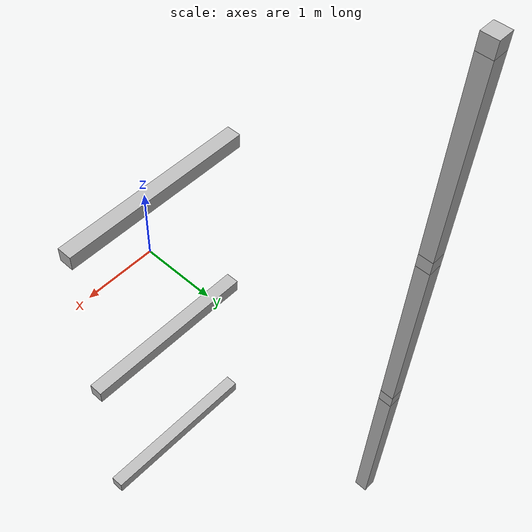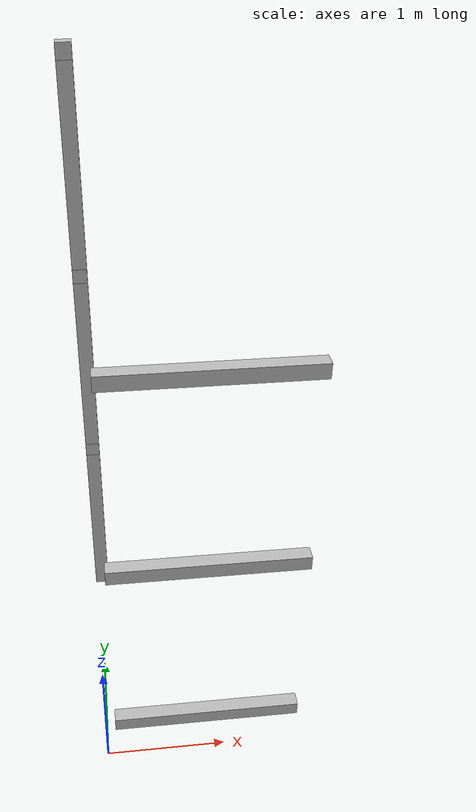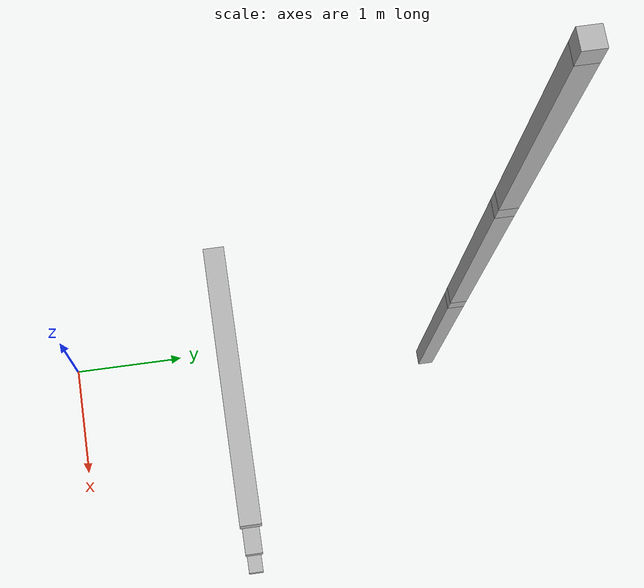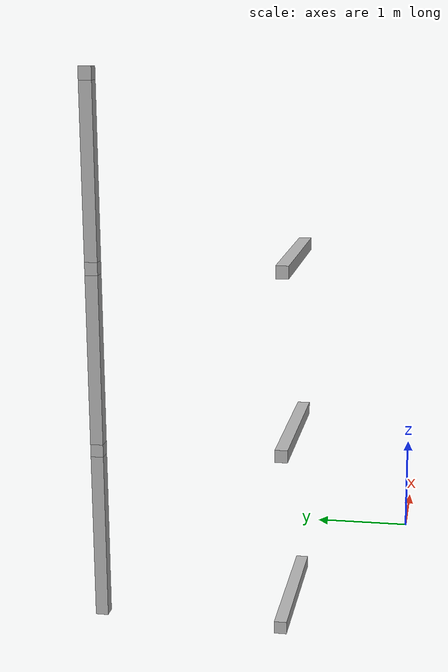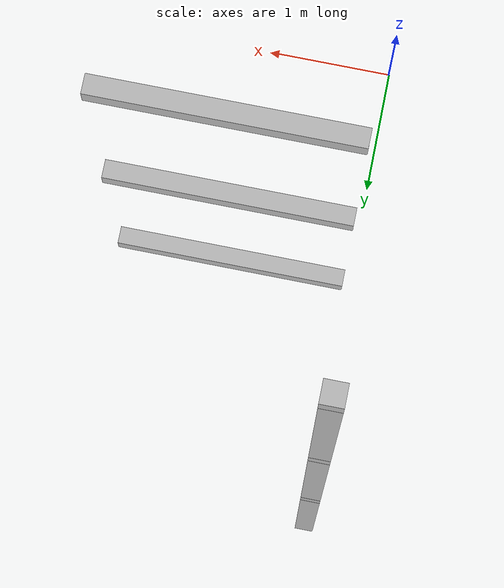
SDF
<sdf version="1.7">
 <world name="default">
  <model name="orthogonal_747_2.000.15_TS">
   <static>1</static>
   <link name="x_link_0_3_3">
    <inertial>
     <mass>1</mass>
     <inertia>
      <ixx>0.166667</ixx>
      <ixy>0</ixy>
      <ixz>0</ixz>
      <iyy>0.166667</iyy>
      <iyz>0</iyz>
      <izz>0.166667</izz>
     </inertia>
    </inertial>
    <pose>7.525 6.45 1.075 0 -0 0</pose>
    <visual name="visual_0">
     <laser_retro>547</laser_retro>
     <geometry><box><size>2 1e-06 0.15</size></box></geometry>
     <material>
      <script><name>Gazebo/Grey</name><uri>file://media/materials/scripts/gazebo.material</uri></script>
      <shader type="pixel"><normal_map>__default__</normal_map></shader>
      <ambient>0.678 0.498 0.659 1</ambient>
      <diffuse>0.7 0.7 0.7 1</diffuse>
      <specular>0.01 0.01 0.01 1</specular>
      <emissive>0 0 0 1</emissive>
     </material>
     <pose>0 -0.075 0 0 -0 0</pose>
     <transparency>1</transparency>
    </visual>
    <visual name="visual_1">
     <laser_retro>548</laser_retro>
     <geometry><box><size>2 1e-06 0.15</size></box></geometry>
     <material>
      <script><name>Gazebo/Grey</name><uri>file://media/materials/scripts/gazebo.material</uri></script>
      <shader type="pixel"><normal_map>__default__</normal_map></shader>
      <ambient>0.447 0.624 0.812 1</ambient>
      <diffuse>0.7 0.7 0.7 1</diffuse>
      <specular>0.01 0.01 0.01 1</specular>
      <emissive>0 0 0 1</emissive>
     </material>
     <pose>0 0.075 0 0 -0 0</pose>
     <transparency>1</transparency>
    </visual>
    <visual name="visual_2">
     <laser_retro>549</laser_retro>
     <geometry><box><size>2 0.15 1e-06</size></box></geometry>
     <material>
      <script><name>Gazebo/Grey</name><uri>file://media/materials/scripts/gazebo.material</uri></script>
      <shader type="pixel"><normal_map>__default__</normal_map></shader>
      <ambient>0.988 0.686 0.243 1</ambient>
      <diffuse>0.7 0.7 0.7 1</diffuse>
      <specular>0.01 0.01 0.01 1</specular>
      <emissive>0 0 0 1</emissive>
     </material>
     <pose>0 0 -0.075 0 -0 0</pose>
     <transparency>1</transparency>
    </visual>
    <visual name="visual_3">
     <laser_retro>550</laser_retro>
     <geometry><box><size>1e-06 0.15 0.15</size></box></geometry>
     <material>
      <script><name>Gazebo/Grey</name><uri>file://media/materials/scripts/gazebo.material</uri></script>
      <shader type="pixel"><normal_map>__default__</normal_map></shader>
      <ambient>0.988 0.914 0.31 1</ambient>
      <diffuse>0.7 0.7 0.7 1</diffuse>
      <specular>0.01 0.01 0.01 1</specular>
      <emissive>0 0 0 1</emissive>
     </material>
     <pose>1 0 0 0 -0 0</pose>
     <transparency>1</transparency>
    </visual>
    <visual name="visual_4">
     <laser_retro>551</laser_retro>
     <geometry><box><size>2 0.15 1e-06</size></box></geometry>
     <material>
      <script><name>Gazebo/Grey</name><uri>file://media/materials/scripts/gazebo.material</uri></script>
      <shader type="pixel"><normal_map>__default__</normal_map></shader>
      <ambient>0.937 0.161 0.161 1</ambient>
      <diffuse>0.7 0.7 0.7 1</diffuse>
      <specular>0.01 0.01 0.01 1</specular>
      <emissive>0 0 0 1</emissive>
     </material>
     <pose>0 0 0.075 0 -0 0</pose>
     <transparency>1</transparency>
    </visual>
    <visual name="visual_5">
     <laser_retro>552</laser_retro>
     <geometry><box><size>1e-06 0.15 0.15</size></box></geometry>
     <material>
      <script><name>Gazebo/Grey</name><uri>file://media/materials/scripts/gazebo.material</uri></script>
      <shader type="pixel"><normal_map>__default__</normal_map></shader>
      <ambient>0.541 0.886 0.204 1</ambient>
      <diffuse>0.7 0.7 0.7 1</diffuse>
      <specular>0.01 0.01 0.01 1</specular>
      <emissive>0 0 0 1</emissive>
     </material>
     <pose>-1 0 0 0 -0 0</pose>
     <transparency>1</transparency>
    </visual>
    <visual name="visual_texture">
     <geometry><box><size>1.9998 0.149985 0.149985</size></box></geometry>
     <material>
      <script>
       <uri>model://BASE_MODELS/simple_block_v2_textured/materials/scripts</uri>
       <uri>model://BASE_MODELS/simple_block_v2_textured/materials/textures</uri>
       <name>metal</name>
      </script>
     </material>
     <laser_retro>553</laser_retro>
    </visual>
    <collision name="collision">
     <geometry><box><size>2 0.15 0.15</size></box></geometry>
     <surface>
      <friction>
       <ode><mu>1</mu><mu2>1</mu2><fdir1>0 0 0</fdir1><slip1>0</slip1><slip2>0</slip2></ode>
       <torsional>
        <coefficient>1</coefficient>
        <patch_radius>0</patch_radius>
        <surface_radius>0</surface_radius>
        <use_patch_radius>1</use_patch_radius>
        <ode><slip>0</slip></ode>
       </torsional>
      </friction>
      <bounce><restitution_coefficient>0</restitution_coefficient><threshold>1e+06</threshold></bounce>
      <contact>
       <collide_without_contact>0</collide_without_contact>
       <collide_without_contact_bitmask>1</collide_without_contact_bitmask>
       <collide_bitmask>1</collide_bitmask>
       <ode>
        <soft_cfm>0</soft_cfm>
        <soft_erp>0.2</soft_erp>
        <kp>1e+13</kp>
        <kd>1</kd>
        <max_vel>0.01</max_vel>
        <min_depth>0</min_depth>
       </ode>
       <bullet>
        <split_impulse>1</split_impulse>
        <split_impulse_penetration_threshold>-0.01</split_impulse_penetration_threshold>
        <soft_cfm>0</soft_cfm>
        <soft_erp>0.2</soft_erp>
        <kp>1e+13</kp>
        <kd>1</kd>
       </bullet>
      </contact>
     </surface>
    </collision>
   </link>
   <link name="x_link_1_3_3">
    <inertial>
     <mass>1</mass>
     <inertia>
      <ixx>0.166667</ixx>
      <ixy>0</ixy>
      <ixz>0</ixz>
      <iyy>0.166667</iyy>
      <iyz>0</iyz>
      <izz>0.166667</izz>
     </inertia>
    </inertial>
    <pose>7.525 6.45 3.225 0 -0 0</pose>
    <visual name="visual_0">
     <laser_retro>1387</laser_retro>
     <geometry><box><size>2 1e-06 0.15</size></box></geometry>
     <material>
      <script><name>Gazebo/Grey</name><uri>file://media/materials/scripts/gazebo.material</uri></script>
      <shader type="pixel"><normal_map>__default__</normal_map></shader>
      <ambient>0.678 0.498 0.659 1</ambient>
      <diffuse>0.7 0.7 0.7 1</diffuse>
      <specular>0.01 0.01 0.01 1</specular>
      <emissive>0 0 0 1</emissive>
     </material>
     <pose>0 -0.075 0 0 -0 0</pose>
     <transparency>1</transparency>
    </visual>
    <visual name="visual_1">
     <laser_retro>1388</laser_retro>
     <geometry><box><size>2 1e-06 0.15</size></box></geometry>
     <material>
      <script><name>Gazebo/Grey</name><uri>file://media/materials/scripts/gazebo.material</uri></script>
      <shader type="pixel"><normal_map>__default__</normal_map></shader>
      <ambient>0.447 0.624 0.812 1</ambient>
      <diffuse>0.7 0.7 0.7 1</diffuse>
      <specular>0.01 0.01 0.01 1</specular>
      <emissive>0 0 0 1</emissive>
     </material>
     <pose>0 0.075 0 0 -0 0</pose>
     <transparency>1</transparency>
    </visual>
    <visual name="visual_2">
     <laser_retro>1389</laser_retro>
     <geometry><box><size>2 0.15 1e-06</size></box></geometry>
     <material>
      <script><name>Gazebo/Grey</name><uri>file://media/materials/scripts/gazebo.material</uri></script>
      <shader type="pixel"><normal_map>__default__</normal_map></shader>
      <ambient>0.988 0.686 0.243 1</ambient>
      <diffuse>0.7 0.7 0.7 1</diffuse>
      <specular>0.01 0.01 0.01 1</specular>
      <emissive>0 0 0 1</emissive>
     </material>
     <pose>0 0 -0.075 0 -0 0</pose>
     <transparency>1</transparency>
    </visual>
    <visual name="visual_3">
     <laser_retro>1390</laser_retro>
     <geometry><box><size>1e-06 0.15 0.15</size></box></geometry>
     <material>
      <script><name>Gazebo/Grey</name><uri>file://media/materials/scripts/gazebo.material</uri></script>
      <shader type="pixel"><normal_map>__default__</normal_map></shader>
      <ambient>0.988 0.914 0.31 1</ambient>
      <diffuse>0.7 0.7 0.7 1</diffuse>
      <specular>0.01 0.01 0.01 1</specular>
      <emissive>0 0 0 1</emissive>
     </material>
     <pose>1 0 0 0 -0 0</pose>
     <transparency>1</transparency>
    </visual>
    <visual name="visual_4">
     <laser_retro>1391</laser_retro>
     <geometry><box><size>2 0.15 1e-06</size></box></geometry>
     <material>
      <script><name>Gazebo/Grey</name><uri>file://media/materials/scripts/gazebo.material</uri></script>
      <shader type="pixel"><normal_map>__default__</normal_map></shader>
      <ambient>0.937 0.161 0.161 1</ambient>
      <diffuse>0.7 0.7 0.7 1</diffuse>
      <specular>0.01 0.01 0.01 1</specular>
      <emissive>0 0 0 1</emissive>
     </material>
     <pose>0 0 0.075 0 -0 0</pose>
     <transparency>1</transparency>
    </visual>
    <visual name="visual_5">
     <laser_retro>1392</laser_retro>
     <geometry><box><size>1e-06 0.15 0.15</size></box></geometry>
     <material>
      <script><name>Gazebo/Grey</name><uri>file://media/materials/scripts/gazebo.material</uri></script>
      <shader type="pixel"><normal_map>__default__</normal_map></shader>
      <ambient>0.541 0.886 0.204 1</ambient>
      <diffuse>0.7 0.7 0.7 1</diffuse>
      <specular>0.01 0.01 0.01 1</specular>
      <emissive>0 0 0 1</emissive>
     </material>
     <pose>-1 0 0 0 -0 0</pose>
     <transparency>1</transparency>
    </visual>
    <visual name="visual_texture">
     <geometry><box><size>1.9998 0.149985 0.149985</size></box></geometry>
     <material>
      <script>
       <uri>model://BASE_MODELS/simple_block_v2_textured/materials/scripts</uri>
       <uri>model://BASE_MODELS/simple_block_v2_textured/materials/textures</uri>
       <name>metal</name>
      </script>
     </material>
     <laser_retro>1393</laser_retro>
    </visual>
    <collision name="collision">
     <geometry><box><size>2 0.15 0.15</size></box></geometry>
     <surface>
      <friction>
       <ode><mu>1</mu><mu2>1</mu2><fdir1>0 0 0</fdir1><slip1>0</slip1><slip2>0</slip2></ode>
       <torsional>
        <coefficient>1</coefficient>
        <patch_radius>0</patch_radius>
        <surface_radius>0</surface_radius>
        <use_patch_radius>1</use_patch_radius>
        <ode><slip>0</slip></ode>
       </torsional>
      </friction>
      <bounce><restitution_coefficient>0</restitution_coefficient><threshold>1e+06</threshold></bounce>
      <contact>
       <collide_without_contact>0</collide_without_contact>
       <collide_without_contact_bitmask>1</collide_without_contact_bitmask>
       <collide_bitmask>1</collide_bitmask>
       <ode>
        <soft_cfm>0</soft_cfm>
        <soft_erp>0.2</soft_erp>
        <kp>1e+13</kp>
        <kd>1</kd>
        <max_vel>0.01</max_vel>
        <min_depth>0</min_depth>
       </ode>
       <bullet>
        <split_impulse>1</split_impulse>
        <split_impulse_penetration_threshold>-0.01</split_impulse_penetration_threshold>
        <soft_cfm>0</soft_cfm>
        <soft_erp>0.2</soft_erp>
        <kp>1e+13</kp>
        <kd>1</kd>
       </bullet>
      </contact>
     </surface>
    </collision>
   </link>
   <link name="u_link_1_4_3">
    <inertial>
     <mass>1</mass>
     <inertia>
      <ixx>0.166667</ixx>
      <ixy>0</ixy>
      <ixz>0</ixz>
      <iyy>0.166667</iyy>
      <iyz>0</iyz>
      <izz>0.166667</izz>
     </inertia>
    </inertial>
    <pose>6.45 8.6 3.225 0 -0 0</pose>
    <visual name="visual_0">
     <laser_retro>1562</laser_retro>
     <geometry><box><size>0.15 1e-06 0.15</size></box></geometry>
     <material>
      <script><name>Gazebo/Grey</name><uri>file://media/materials/scripts/gazebo.material</uri></script>
      <shader type="pixel"><normal_map>__default__</normal_map></shader>
      <ambient>0.678 0.498 0.659 1</ambient>
      <diffuse>0.7 0.7 0.7 1</diffuse>
      <specular>0.01 0.01 0.01 1</specular>
      <emissive>0 0 0 1</emissive>
     </material>
     <pose>0 -0.075 0 0 -0 0</pose>
     <transparency>1</transparency>
    </visual>
    <visual name="visual_1">
     <laser_retro>1563</laser_retro>
     <geometry><box><size>0.15 1e-06 0.15</size></box></geometry>
     <material>
      <script><name>Gazebo/Grey</name><uri>file://media/materials/scripts/gazebo.material</uri></script>
      <shader type="pixel"><normal_map>__default__</normal_map></shader>
      <ambient>0.447 0.624 0.812 1</ambient>
      <diffuse>0.7 0.7 0.7 1</diffuse>
      <specular>0.01 0.01 0.01 1</specular>
      <emissive>0 0 0 1</emissive>
     </material>
     <pose>0 0.075 0 0 -0 0</pose>
     <transparency>1</transparency>
    </visual>
    <visual name="visual_2">
     <laser_retro>1564</laser_retro>
     <geometry><box><size>0.15 0.15 1e-06</size></box></geometry>
     <material>
      <script><name>Gazebo/Grey</name><uri>file://media/materials/scripts/gazebo.material</uri></script>
      <shader type="pixel"><normal_map>__default__</normal_map></shader>
      <ambient>0.988 0.686 0.243 1</ambient>
      <diffuse>0.7 0.7 0.7 1</diffuse>
      <specular>0.01 0.01 0.01 1</specular>
      <emissive>0 0 0 1</emissive>
     </material>
     <pose>0 0 -0.075 0 -0 0</pose>
     <transparency>1</transparency>
    </visual>
    <visual name="visual_3">
     <laser_retro>1565</laser_retro>
     <geometry><box><size>1e-06 0.15 0.15</size></box></geometry>
     <material>
      <script><name>Gazebo/Grey</name><uri>file://media/materials/scripts/gazebo.material</uri></script>
      <shader type="pixel"><normal_map>__default__</normal_map></shader>
      <ambient>0.988 0.914 0.31 1</ambient>
      <diffuse>0.7 0.7 0.7 1</diffuse>
      <specular>0.01 0.01 0.01 1</specular>
      <emissive>0 0 0 1</emissive>
     </material>
     <pose>0.075 0 0 0 -0 0</pose>
     <transparency>1</transparency>
    </visual>
    <visual name="visual_4">
     <laser_retro>1566</laser_retro>
     <geometry><box><size>0.15 0.15 1e-06</size></box></geometry>
     <material>
      <script><name>Gazebo/Grey</name><uri>file://media/materials/scripts/gazebo.material</uri></script>
      <shader type="pixel"><normal_map>__default__</normal_map></shader>
      <ambient>0.937 0.161 0.161 1</ambient>
      <diffuse>0.7 0.7 0.7 1</diffuse>
      <specular>0.01 0.01 0.01 1</specular>
      <emissive>0 0 0 1</emissive>
     </material>
     <pose>0 0 0.075 0 -0 0</pose>
     <transparency>1</transparency>
    </visual>
    <visual name="visual_5">
     <laser_retro>1567</laser_retro>
     <geometry><box><size>1e-06 0.15 0.15</size></box></geometry>
     <material>
      <script><name>Gazebo/Grey</name><uri>file://media/materials/scripts/gazebo.material</uri></script>
      <shader type="pixel"><normal_map>__default__</normal_map></shader>
      <ambient>0.541 0.886 0.204 1</ambient>
      <diffuse>0.7 0.7 0.7 1</diffuse>
      <specular>0.01 0.01 0.01 1</specular>
      <emissive>0 0 0 1</emissive>
     </material>
     <pose>-0.075 0 0 0 -0 0</pose>
     <transparency>1</transparency>
    </visual>
    <visual name="visual_texture">
     <geometry><box><size>0.149985 0.149985 0.149985</size></box></geometry>
     <material>
      <script>
       <uri>model://BASE_MODELS/simple_block_v2_textured/materials/scripts</uri>
       <uri>model://BASE_MODELS/simple_block_v2_textured/materials/textures</uri>
       <name>metal</name>
      </script>
     </material>
     <laser_retro>1568</laser_retro>
    </visual>
    <collision name="collision">
     <geometry><box><size>0.15 0.15 0.15</size></box></geometry>
     <surface>
      <friction>
       <ode><mu>1</mu><mu2>1</mu2><fdir1>0 0 0</fdir1><slip1>0</slip1><slip2>0</slip2></ode>
       <torsional>
        <coefficient>1</coefficient>
        <patch_radius>0</patch_radius>
        <surface_radius>0</surface_radius>
        <use_patch_radius>1</use_patch_radius>
        <ode><slip>0</slip></ode>
       </torsional>
      </friction>
      <bounce><restitution_coefficient>0</restitution_coefficient><threshold>1e+06</threshold></bounce>
      <contact>
       <collide_without_contact>0</collide_without_contact>
       <collide_without_contact_bitmask>1</collide_without_contact_bitmask>
       <collide_bitmask>1</collide_bitmask>
       <ode>
        <soft_cfm>0</soft_cfm>
        <soft_erp>0.2</soft_erp>
        <kp>1e+13</kp>
        <kd>1</kd>
        <max_vel>0.01</max_vel>
        <min_depth>0</min_depth>
       </ode>
       <bullet>
        <split_impulse>1</split_impulse>
        <split_impulse_penetration_threshold>-0.01</split_impulse_penetration_threshold>
        <soft_cfm>0</soft_cfm>
        <soft_erp>0.2</soft_erp>
        <kp>1e+13</kp>
        <kd>1</kd>
       </bullet>
      </contact>
     </surface>
    </collision>
   </link>
   <link name="z_link_1_4_3">
    <inertial>
     <mass>1</mass>
     <inertia>
      <ixx>0.166667</ixx>
      <ixy>0</ixy>
      <ixz>0</ixz>
      <iyy>0.166667</iyy>
      <iyz>0</iyz>
      <izz>0.166667</izz>
     </inertia>
    </inertial>
    <pose>6.45 8.6 2.15 0 -0 0</pose>
    <visual name="visual_0">
     <laser_retro>1569</laser_retro>
     <geometry><box><size>0.15 1e-06 2</size></box></geometry>
     <material>
      <script><name>Gazebo/Grey</name><uri>file://media/materials/scripts/gazebo.material</uri></script>
      <shader type="pixel"><normal_map>__default__</normal_map></shader>
      <ambient>0.678 0.498 0.659 1</ambient>
      <diffuse>0.7 0.7 0.7 1</diffuse>
      <specular>0.01 0.01 0.01 1</specular>
      <emissive>0 0 0 1</emissive>
     </material>
     <pose>0 -0.075 0 0 -0 0</pose>
     <transparency>1</transparency>
    </visual>
    <visual name="visual_1">
     <laser_retro>1570</laser_retro>
     <geometry><box><size>0.15 1e-06 2</size></box></geometry>
     <material>
      <script><name>Gazebo/Grey</name><uri>file://media/materials/scripts/gazebo.material</uri></script>
      <shader type="pixel"><normal_map>__default__</normal_map></shader>
      <ambient>0.447 0.624 0.812 1</ambient>
      <diffuse>0.7 0.7 0.7 1</diffuse>
      <specular>0.01 0.01 0.01 1</specular>
      <emissive>0 0 0 1</emissive>
     </material>
     <pose>0 0.075 0 0 -0 0</pose>
     <transparency>1</transparency>
    </visual>
    <visual name="visual_2">
     <laser_retro>1571</laser_retro>
     <geometry><box><size>0.15 0.15 1e-06</size></box></geometry>
     <material>
      <script><name>Gazebo/Grey</name><uri>file://media/materials/scripts/gazebo.material</uri></script>
      <shader type="pixel"><normal_map>__default__</normal_map></shader>
      <ambient>0.988 0.686 0.243 1</ambient>
      <diffuse>0.7 0.7 0.7 1</diffuse>
      <specular>0.01 0.01 0.01 1</specular>
      <emissive>0 0 0 1</emissive>
     </material>
     <pose>0 0 -1 0 -0 0</pose>
     <transparency>1</transparency>
    </visual>
    <visual name="visual_3">
     <laser_retro>1572</laser_retro>
     <geometry><box><size>1e-06 0.15 2</size></box></geometry>
     <material>
      <script><name>Gazebo/Grey</name><uri>file://media/materials/scripts/gazebo.material</uri></script>
      <shader type="pixel"><normal_map>__default__</normal_map></shader>
      <ambient>0.988 0.914 0.31 1</ambient>
      <diffuse>0.7 0.7 0.7 1</diffuse>
      <specular>0.01 0.01 0.01 1</specular>
      <emissive>0 0 0 1</emissive>
     </material>
     <pose>0.075 0 0 0 -0 0</pose>
     <transparency>1</transparency>
    </visual>
    <visual name="visual_4">
     <laser_retro>1573</laser_retro>
     <geometry><box><size>0.15 0.15 1e-06</size></box></geometry>
     <material>
      <script><name>Gazebo/Grey</name><uri>file://media/materials/scripts/gazebo.material</uri></script>
      <shader type="pixel"><normal_map>__default__</normal_map></shader>
      <ambient>0.937 0.161 0.161 1</ambient>
      <diffuse>0.7 0.7 0.7 1</diffuse>
      <specular>0.01 0.01 0.01 1</specular>
      <emissive>0 0 0 1</emissive>
     </material>
     <pose>0 0 1 0 -0 0</pose>
     <transparency>1</transparency>
    </visual>
    <visual name="visual_5">
     <laser_retro>1574</laser_retro>
     <geometry><box><size>1e-06 0.15 2</size></box></geometry>
     <material>
      <script><name>Gazebo/Grey</name><uri>file://media/materials/scripts/gazebo.material</uri></script>
      <shader type="pixel"><normal_map>__default__</normal_map></shader>
      <ambient>0.541 0.886 0.204 1</ambient>
      <diffuse>0.7 0.7 0.7 1</diffuse>
      <specular>0.01 0.01 0.01 1</specular>
      <emissive>0 0 0 1</emissive>
     </material>
     <pose>-0.075 0 0 0 -0 0</pose>
     <transparency>1</transparency>
    </visual>
    <visual name="visual_texture">
     <geometry><box><size>0.149985 0.149985 1.9998</size></box></geometry>
     <material>
      <script>
       <uri>model://BASE_MODELS/simple_block_v2_textured/materials/scripts</uri>
       <uri>model://BASE_MODELS/simple_block_v2_textured/materials/textures</uri>
       <name>metal</name>
      </script>
     </material>
     <laser_retro>1575</laser_retro>
    </visual>
    <collision name="collision">
     <geometry><box><size>0.15 0.15 2</size></box></geometry>
     <surface>
      <friction>
       <ode><mu>1</mu><mu2>1</mu2><fdir1>0 0 0</fdir1><slip1>0</slip1><slip2>0</slip2></ode>
       <torsional>
        <coefficient>1</coefficient>
        <patch_radius>0</patch_radius>
        <surface_radius>0</surface_radius>
        <use_patch_radius>1</use_patch_radius>
        <ode><slip>0</slip></ode>
       </torsional>
      </friction>
      <bounce><restitution_coefficient>0</restitution_coefficient><threshold>1e+06</threshold></bounce>
      <contact>
       <collide_without_contact>0</collide_without_contact>
       <collide_without_contact_bitmask>1</collide_without_contact_bitmask>
       <collide_bitmask>1</collide_bitmask>
       <ode>
        <soft_cfm>0</soft_cfm>
        <soft_erp>0.2</soft_erp>
        <kp>1e+13</kp>
        <kd>1</kd>
        <max_vel>0.01</max_vel>
        <min_depth>0</min_depth>
       </ode>
       <bullet>
        <split_impulse>1</split_impulse>
        <split_impulse_penetration_threshold>-0.01</split_impulse_penetration_threshold>
        <soft_cfm>0</soft_cfm>
        <soft_erp>0.2</soft_erp>
        <kp>1e+13</kp>
        <kd>1</kd>
       </bullet>
      </contact>
     </surface>
    </collision>
   </link>
   <link name="x_link_2_3_3">
    <inertial>
     <mass>1</mass>
     <inertia>
      <ixx>0.166667</ixx>
      <ixy>0</ixy>
      <ixz>0</ixz>
      <iyy>0.166667</iyy>
      <iyz>0</iyz>
      <izz>0.166667</izz>
     </inertia>
    </inertial>
    <pose>7.525 6.45 5.375 0 -0 0</pose>
    <visual name="visual_0">
     <laser_retro>2290</laser_retro>
     <geometry><box><size>2 1e-06 0.15</size></box></geometry>
     <material>
      <script><name>Gazebo/Grey</name><uri>file://media/materials/scripts/gazebo.material</uri></script>
      <shader type="pixel"><normal_map>__default__</normal_map></shader>
      <ambient>0.678 0.498 0.659 1</ambient>
      <diffuse>0.7 0.7 0.7 1</diffuse>
      <specular>0.01 0.01 0.01 1</specular>
      <emissive>0 0 0 1</emissive>
     </material>
     <pose>0 -0.075 0 0 -0 0</pose>
     <transparency>1</transparency>
    </visual>
    <visual name="visual_1">
     <laser_retro>2291</laser_retro>
     <geometry><box><size>2 1e-06 0.15</size></box></geometry>
     <material>
      <script><name>Gazebo/Grey</name><uri>file://media/materials/scripts/gazebo.material</uri></script>
      <shader type="pixel"><normal_map>__default__</normal_map></shader>
      <ambient>0.447 0.624 0.812 1</ambient>
      <diffuse>0.7 0.7 0.7 1</diffuse>
      <specular>0.01 0.01 0.01 1</specular>
      <emissive>0 0 0 1</emissive>
     </material>
     <pose>0 0.075 0 0 -0 0</pose>
     <transparency>1</transparency>
    </visual>
    <visual name="visual_2">
     <laser_retro>2292</laser_retro>
     <geometry><box><size>2 0.15 1e-06</size></box></geometry>
     <material>
      <script><name>Gazebo/Grey</name><uri>file://media/materials/scripts/gazebo.material</uri></script>
      <shader type="pixel"><normal_map>__default__</normal_map></shader>
      <ambient>0.988 0.686 0.243 1</ambient>
      <diffuse>0.7 0.7 0.7 1</diffuse>
      <specular>0.01 0.01 0.01 1</specular>
      <emissive>0 0 0 1</emissive>
     </material>
     <pose>0 0 -0.075 0 -0 0</pose>
     <transparency>1</transparency>
    </visual>
    <visual name="visual_3">
     <laser_retro>2293</laser_retro>
     <geometry><box><size>1e-06 0.15 0.15</size></box></geometry>
     <material>
      <script><name>Gazebo/Grey</name><uri>file://media/materials/scripts/gazebo.material</uri></script>
      <shader type="pixel"><normal_map>__default__</normal_map></shader>
      <ambient>0.988 0.914 0.31 1</ambient>
      <diffuse>0.7 0.7 0.7 1</diffuse>
      <specular>0.01 0.01 0.01 1</specular>
      <emissive>0 0 0 1</emissive>
     </material>
     <pose>1 0 0 0 -0 0</pose>
     <transparency>1</transparency>
    </visual>
    <visual name="visual_4">
     <laser_retro>2294</laser_retro>
     <geometry><box><size>2 0.15 1e-06</size></box></geometry>
     <material>
      <script><name>Gazebo/Grey</name><uri>file://media/materials/scripts/gazebo.material</uri></script>
      <shader type="pixel"><normal_map>__default__</normal_map></shader>
      <ambient>0.937 0.161 0.161 1</ambient>
      <diffuse>0.7 0.7 0.7 1</diffuse>
      <specular>0.01 0.01 0.01 1</specular>
      <emissive>0 0 0 1</emissive>
     </material>
     <pose>0 0 0.075 0 -0 0</pose>
     <transparency>1</transparency>
    </visual>
    <visual name="visual_5">
     <laser_retro>2295</laser_retro>
     <geometry><box><size>1e-06 0.15 0.15</size></box></geometry>
     <material>
      <script><name>Gazebo/Grey</name><uri>file://media/materials/scripts/gazebo.material</uri></script>
      <shader type="pixel"><normal_map>__default__</normal_map></shader>
      <ambient>0.541 0.886 0.204 1</ambient>
      <diffuse>0.7 0.7 0.7 1</diffuse>
      <specular>0.01 0.01 0.01 1</specular>
      <emissive>0 0 0 1</emissive>
     </material>
     <pose>-1 0 0 0 -0 0</pose>
     <transparency>1</transparency>
    </visual>
    <visual name="visual_texture">
     <geometry><box><size>1.9998 0.149985 0.149985</size></box></geometry>
     <material>
      <script>
       <uri>model://BASE_MODELS/simple_block_v2_textured/materials/scripts</uri>
       <uri>model://BASE_MODELS/simple_block_v2_textured/materials/textures</uri>
       <name>metal</name>
      </script>
     </material>
     <laser_retro>2296</laser_retro>
    </visual>
    <collision name="collision">
     <geometry><box><size>2 0.15 0.15</size></box></geometry>
     <surface>
      <friction>
       <ode><mu>1</mu><mu2>1</mu2><fdir1>0 0 0</fdir1><slip1>0</slip1><slip2>0</slip2></ode>
       <torsional>
        <coefficient>1</coefficient>
        <patch_radius>0</patch_radius>
        <surface_radius>0</surface_radius>
        <use_patch_radius>1</use_patch_radius>
        <ode><slip>0</slip></ode>
       </torsional>
      </friction>
      <bounce><restitution_coefficient>0</restitution_coefficient><threshold>1e+06</threshold></bounce>
      <contact>
       <collide_without_contact>0</collide_without_contact>
       <collide_without_contact_bitmask>1</collide_without_contact_bitmask>
       <collide_bitmask>1</collide_bitmask>
       <ode>
        <soft_cfm>0</soft_cfm>
        <soft_erp>0.2</soft_erp>
        <kp>1e+13</kp>
        <kd>1</kd>
        <max_vel>0.01</max_vel>
        <min_depth>0</min_depth>
       </ode>
       <bullet>
        <split_impulse>1</split_impulse>
        <split_impulse_penetration_threshold>-0.01</split_impulse_penetration_threshold>
        <soft_cfm>0</soft_cfm>
        <soft_erp>0.2</soft_erp>
        <kp>1e+13</kp>
        <kd>1</kd>
       </bullet>
      </contact>
     </surface>
    </collision>
   </link>
   <link name="u_link_2_4_3">
    <inertial>
     <mass>1</mass>
     <inertia>
      <ixx>0.166667</ixx>
      <ixy>0</ixy>
      <ixz>0</ixz>
      <iyy>0.166667</iyy>
      <iyz>0</iyz>
      <izz>0.166667</izz>
     </inertia>
    </inertial>
    <pose>6.45 8.6 5.375 0 -0 0</pose>
    <visual name="visual_0">
     <laser_retro>2465</laser_retro>
     <geometry><box><size>0.15 1e-06 0.15</size></box></geometry>
     <material>
      <script><name>Gazebo/Grey</name><uri>file://media/materials/scripts/gazebo.material</uri></script>
      <shader type="pixel"><normal_map>__default__</normal_map></shader>
      <ambient>0.678 0.498 0.659 1</ambient>
      <diffuse>0.7 0.7 0.7 1</diffuse>
      <specular>0.01 0.01 0.01 1</specular>
      <emissive>0 0 0 1</emissive>
     </material>
     <pose>0 -0.075 0 0 -0 0</pose>
     <transparency>1</transparency>
    </visual>
    <visual name="visual_1">
     <laser_retro>2466</laser_retro>
     <geometry><box><size>0.15 1e-06 0.15</size></box></geometry>
     <material>
      <script><name>Gazebo/Grey</name><uri>file://media/materials/scripts/gazebo.material</uri></script>
      <shader type="pixel"><normal_map>__default__</normal_map></shader>
      <ambient>0.447 0.624 0.812 1</ambient>
      <diffuse>0.7 0.7 0.7 1</diffuse>
      <specular>0.01 0.01 0.01 1</specular>
      <emissive>0 0 0 1</emissive>
     </material>
     <pose>0 0.075 0 0 -0 0</pose>
     <transparency>1</transparency>
    </visual>
    <visual name="visual_2">
     <laser_retro>2467</laser_retro>
     <geometry><box><size>0.15 0.15 1e-06</size></box></geometry>
     <material>
      <script><name>Gazebo/Grey</name><uri>file://media/materials/scripts/gazebo.material</uri></script>
      <shader type="pixel"><normal_map>__default__</normal_map></shader>
      <ambient>0.988 0.686 0.243 1</ambient>
      <diffuse>0.7 0.7 0.7 1</diffuse>
      <specular>0.01 0.01 0.01 1</specular>
      <emissive>0 0 0 1</emissive>
     </material>
     <pose>0 0 -0.075 0 -0 0</pose>
     <transparency>1</transparency>
    </visual>
    <visual name="visual_3">
     <laser_retro>2468</laser_retro>
     <geometry><box><size>1e-06 0.15 0.15</size></box></geometry>
     <material>
      <script><name>Gazebo/Grey</name><uri>file://media/materials/scripts/gazebo.material</uri></script>
      <shader type="pixel"><normal_map>__default__</normal_map></shader>
      <ambient>0.988 0.914 0.31 1</ambient>
      <diffuse>0.7 0.7 0.7 1</diffuse>
      <specular>0.01 0.01 0.01 1</specular>
      <emissive>0 0 0 1</emissive>
     </material>
     <pose>0.075 0 0 0 -0 0</pose>
     <transparency>1</transparency>
    </visual>
    <visual name="visual_4">
     <laser_retro>2469</laser_retro>
     <geometry><box><size>0.15 0.15 1e-06</size></box></geometry>
     <material>
      <script><name>Gazebo/Grey</name><uri>file://media/materials/scripts/gazebo.material</uri></script>
      <shader type="pixel"><normal_map>__default__</normal_map></shader>
      <ambient>0.937 0.161 0.161 1</ambient>
      <diffuse>0.7 0.7 0.7 1</diffuse>
      <specular>0.01 0.01 0.01 1</specular>
      <emissive>0 0 0 1</emissive>
     </material>
     <pose>0 0 0.075 0 -0 0</pose>
     <transparency>1</transparency>
    </visual>
    <visual name="visual_5">
     <laser_retro>2470</laser_retro>
     <geometry><box><size>1e-06 0.15 0.15</size></box></geometry>
     <material>
      <script><name>Gazebo/Grey</name><uri>file://media/materials/scripts/gazebo.material</uri></script>
      <shader type="pixel"><normal_map>__default__</normal_map></shader>
      <ambient>0.541 0.886 0.204 1</ambient>
      <diffuse>0.7 0.7 0.7 1</diffuse>
      <specular>0.01 0.01 0.01 1</specular>
      <emissive>0 0 0 1</emissive>
     </material>
     <pose>-0.075 0 0 0 -0 0</pose>
     <transparency>1</transparency>
    </visual>
    <visual name="visual_texture">
     <geometry><box><size>0.149985 0.149985 0.149985</size></box></geometry>
     <material>
      <script>
       <uri>model://BASE_MODELS/simple_block_v2_textured/materials/scripts</uri>
       <uri>model://BASE_MODELS/simple_block_v2_textured/materials/textures</uri>
       <name>metal</name>
      </script>
     </material>
     <laser_retro>2471</laser_retro>
    </visual>
    <collision name="collision">
     <geometry><box><size>0.15 0.15 0.15</size></box></geometry>
     <surface>
      <friction>
       <ode><mu>1</mu><mu2>1</mu2><fdir1>0 0 0</fdir1><slip1>0</slip1><slip2>0</slip2></ode>
       <torsional>
        <coefficient>1</coefficient>
        <patch_radius>0</patch_radius>
        <surface_radius>0</surface_radius>
        <use_patch_radius>1</use_patch_radius>
        <ode><slip>0</slip></ode>
       </torsional>
      </friction>
      <bounce><restitution_coefficient>0</restitution_coefficient><threshold>1e+06</threshold></bounce>
      <contact>
       <collide_without_contact>0</collide_without_contact>
       <collide_without_contact_bitmask>1</collide_without_contact_bitmask>
       <collide_bitmask>1</collide_bitmask>
       <ode>
        <soft_cfm>0</soft_cfm>
        <soft_erp>0.2</soft_erp>
        <kp>1e+13</kp>
        <kd>1</kd>
        <max_vel>0.01</max_vel>
        <min_depth>0</min_depth>
       </ode>
       <bullet>
        <split_impulse>1</split_impulse>
        <split_impulse_penetration_threshold>-0.01</split_impulse_penetration_threshold>
        <soft_cfm>0</soft_cfm>
        <soft_erp>0.2</soft_erp>
        <kp>1e+13</kp>
        <kd>1</kd>
       </bullet>
      </contact>
     </surface>
    </collision>
   </link>
   <link name="z_link_2_4_3">
    <inertial>
     <mass>1</mass>
     <inertia>
      <ixx>0.166667</ixx>
      <ixy>0</ixy>
      <ixz>0</ixz>
      <iyy>0.166667</iyy>
      <iyz>0</iyz>
      <izz>0.166667</izz>
     </inertia>
    </inertial>
    <pose>6.45 8.6 4.3 0 -0 0</pose>
    <visual name="visual_0">
     <laser_retro>2472</laser_retro>
     <geometry><box><size>0.15 1e-06 2</size></box></geometry>
     <material>
      <script><name>Gazebo/Grey</name><uri>file://media/materials/scripts/gazebo.material</uri></script>
      <shader type="pixel"><normal_map>__default__</normal_map></shader>
      <ambient>0.678 0.498 0.659 1</ambient>
      <diffuse>0.7 0.7 0.7 1</diffuse>
      <specular>0.01 0.01 0.01 1</specular>
      <emissive>0 0 0 1</emissive>
     </material>
     <pose>0 -0.075 0 0 -0 0</pose>
     <transparency>1</transparency>
    </visual>
    <visual name="visual_1">
     <laser_retro>2473</laser_retro>
     <geometry><box><size>0.15 1e-06 2</size></box></geometry>
     <material>
      <script><name>Gazebo/Grey</name><uri>file://media/materials/scripts/gazebo.material</uri></script>
      <shader type="pixel"><normal_map>__default__</normal_map></shader>
      <ambient>0.447 0.624 0.812 1</ambient>
      <diffuse>0.7 0.7 0.7 1</diffuse>
      <specular>0.01 0.01 0.01 1</specular>
      <emissive>0 0 0 1</emissive>
     </material>
     <pose>0 0.075 0 0 -0 0</pose>
     <transparency>1</transparency>
    </visual>
    <visual name="visual_2">
     <laser_retro>2474</laser_retro>
     <geometry><box><size>0.15 0.15 1e-06</size></box></geometry>
     <material>
      <script><name>Gazebo/Grey</name><uri>file://media/materials/scripts/gazebo.material</uri></script>
      <shader type="pixel"><normal_map>__default__</normal_map></shader>
      <ambient>0.988 0.686 0.243 1</ambient>
      <diffuse>0.7 0.7 0.7 1</diffuse>
      <specular>0.01 0.01 0.01 1</specular>
      <emissive>0 0 0 1</emissive>
     </material>
     <pose>0 0 -1 0 -0 0</pose>
     <transparency>1</transparency>
    </visual>
    <visual name="visual_3">
     <laser_retro>2475</laser_retro>
     <geometry><box><size>1e-06 0.15 2</size></box></geometry>
     <material>
      <script><name>Gazebo/Grey</name><uri>file://media/materials/scripts/gazebo.material</uri></script>
      <shader type="pixel"><normal_map>__default__</normal_map></shader>
      <ambient>0.988 0.914 0.31 1</ambient>
      <diffuse>0.7 0.7 0.7 1</diffuse>
      <specular>0.01 0.01 0.01 1</specular>
      <emissive>0 0 0 1</emissive>
     </material>
     <pose>0.075 0 0 0 -0 0</pose>
     <transparency>1</transparency>
    </visual>
    <visual name="visual_4">
     <laser_retro>2476</laser_retro>
     <geometry><box><size>0.15 0.15 1e-06</size></box></geometry>
     <material>
      <script><name>Gazebo/Grey</name><uri>file://media/materials/scripts/gazebo.material</uri></script>
      <shader type="pixel"><normal_map>__default__</normal_map></shader>
      <ambient>0.937 0.161 0.161 1</ambient>
      <diffuse>0.7 0.7 0.7 1</diffuse>
      <specular>0.01 0.01 0.01 1</specular>
      <emissive>0 0 0 1</emissive>
     </material>
     <pose>0 0 1 0 -0 0</pose>
     <transparency>1</transparency>
    </visual>
    <visual name="visual_5">
     <laser_retro>2477</laser_retro>
     <geometry><box><size>1e-06 0.15 2</size></box></geometry>
     <material>
      <script><name>Gazebo/Grey</name><uri>file://media/materials/scripts/gazebo.material</uri></script>
      <shader type="pixel"><normal_map>__default__</normal_map></shader>
      <ambient>0.541 0.886 0.204 1</ambient>
      <diffuse>0.7 0.7 0.7 1</diffuse>
      <specular>0.01 0.01 0.01 1</specular>
      <emissive>0 0 0 1</emissive>
     </material>
     <pose>-0.075 0 0 0 -0 0</pose>
     <transparency>1</transparency>
    </visual>
    <visual name="visual_texture">
     <geometry><box><size>0.149985 0.149985 1.9998</size></box></geometry>
     <material>
      <script>
       <uri>model://BASE_MODELS/simple_block_v2_textured/materials/scripts</uri>
       <uri>model://BASE_MODELS/simple_block_v2_textured/materials/textures</uri>
       <name>metal</name>
      </script>
     </material>
     <laser_retro>2478</laser_retro>
    </visual>
    <collision name="collision">
     <geometry><box><size>0.15 0.15 2</size></box></geometry>
     <surface>
      <friction>
       <ode><mu>1</mu><mu2>1</mu2><fdir1>0 0 0</fdir1><slip1>0</slip1><slip2>0</slip2></ode>
       <torsional>
        <coefficient>1</coefficient>
        <patch_radius>0</patch_radius>
        <surface_radius>0</surface_radius>
        <use_patch_radius>1</use_patch_radius>
        <ode><slip>0</slip></ode>
       </torsional>
      </friction>
      <bounce><restitution_coefficient>0</restitution_coefficient><threshold>1e+06</threshold></bounce>
      <contact>
       <collide_without_contact>0</collide_without_contact>
       <collide_without_contact_bitmask>1</collide_without_contact_bitmask>
       <collide_bitmask>1</collide_bitmask>
       <ode>
        <soft_cfm>0</soft_cfm>
        <soft_erp>0.2</soft_erp>
        <kp>1e+13</kp>
        <kd>1</kd>
        <max_vel>0.01</max_vel>
        <min_depth>0</min_depth>
       </ode>
       <bullet>
        <split_impulse>1</split_impulse>
        <split_impulse_penetration_threshold>-0.01</split_impulse_penetration_threshold>
        <soft_cfm>0</soft_cfm>
        <soft_erp>0.2</soft_erp>
        <kp>1e+13</kp>
        <kd>1</kd>
       </bullet>
      </contact>
     </surface>
    </collision>
   </link>
   <link name="u_link_3_4_3">
    <inertial>
     <mass>1</mass>
     <inertia>
      <ixx>0.166667</ixx>
      <ixy>0</ixy>
      <ixz>0</ixz>
      <iyy>0.166667</iyy>
      <iyz>0</iyz>
      <izz>0.166667</izz>
     </inertia>
    </inertial>
    <pose>6.45 8.6 7.525 0 -0 0</pose>
    <visual name="visual_0">
     <laser_retro>3368</laser_retro>
     <geometry><box><size>0.15 1e-06 0.15</size></box></geometry>
     <material>
      <script><name>Gazebo/Grey</name><uri>file://media/materials/scripts/gazebo.material</uri></script>
      <shader type="pixel"><normal_map>__default__</normal_map></shader>
      <ambient>0.678 0.498 0.659 1</ambient>
      <diffuse>0.7 0.7 0.7 1</diffuse>
      <specular>0.01 0.01 0.01 1</specular>
      <emissive>0 0 0 1</emissive>
     </material>
     <pose>0 -0.075 0 0 -0 0</pose>
     <transparency>1</transparency>
    </visual>
    <visual name="visual_1">
     <laser_retro>3369</laser_retro>
     <geometry><box><size>0.15 1e-06 0.15</size></box></geometry>
     <material>
      <script><name>Gazebo/Grey</name><uri>file://media/materials/scripts/gazebo.material</uri></script>
      <shader type="pixel"><normal_map>__default__</normal_map></shader>
      <ambient>0.447 0.624 0.812 1</ambient>
      <diffuse>0.7 0.7 0.7 1</diffuse>
      <specular>0.01 0.01 0.01 1</specular>
      <emissive>0 0 0 1</emissive>
     </material>
     <pose>0 0.075 0 0 -0 0</pose>
     <transparency>1</transparency>
    </visual>
    <visual name="visual_2">
     <laser_retro>3370</laser_retro>
     <geometry><box><size>0.15 0.15 1e-06</size></box></geometry>
     <material>
      <script><name>Gazebo/Grey</name><uri>file://media/materials/scripts/gazebo.material</uri></script>
      <shader type="pixel"><normal_map>__default__</normal_map></shader>
      <ambient>0.988 0.686 0.243 1</ambient>
      <diffuse>0.7 0.7 0.7 1</diffuse>
      <specular>0.01 0.01 0.01 1</specular>
      <emissive>0 0 0 1</emissive>
     </material>
     <pose>0 0 -0.075 0 -0 0</pose>
     <transparency>1</transparency>
    </visual>
    <visual name="visual_3">
     <laser_retro>3371</laser_retro>
     <geometry><box><size>1e-06 0.15 0.15</size></box></geometry>
     <material>
      <script><name>Gazebo/Grey</name><uri>file://media/materials/scripts/gazebo.material</uri></script>
      <shader type="pixel"><normal_map>__default__</normal_map></shader>
      <ambient>0.988 0.914 0.31 1</ambient>
      <diffuse>0.7 0.7 0.7 1</diffuse>
      <specular>0.01 0.01 0.01 1</specular>
      <emissive>0 0 0 1</emissive>
     </material>
     <pose>0.075 0 0 0 -0 0</pose>
     <transparency>1</transparency>
    </visual>
    <visual name="visual_4">
     <laser_retro>3372</laser_retro>
     <geometry><box><size>0.15 0.15 1e-06</size></box></geometry>
     <material>
      <script><name>Gazebo/Grey</name><uri>file://media/materials/scripts/gazebo.material</uri></script>
      <shader type="pixel"><normal_map>__default__</normal_map></shader>
      <ambient>0.937 0.161 0.161 1</ambient>
      <diffuse>0.7 0.7 0.7 1</diffuse>
      <specular>0.01 0.01 0.01 1</specular>
      <emissive>0 0 0 1</emissive>
     </material>
     <pose>0 0 0.075 0 -0 0</pose>
     <transparency>1</transparency>
    </visual>
    <visual name="visual_5">
     <laser_retro>3373</laser_retro>
     <geometry><box><size>1e-06 0.15 0.15</size></box></geometry>
     <material>
      <script><name>Gazebo/Grey</name><uri>file://media/materials/scripts/gazebo.material</uri></script>
      <shader type="pixel"><normal_map>__default__</normal_map></shader>
      <ambient>0.541 0.886 0.204 1</ambient>
      <diffuse>0.7 0.7 0.7 1</diffuse>
      <specular>0.01 0.01 0.01 1</specular>
      <emissive>0 0 0 1</emissive>
     </material>
     <pose>-0.075 0 0 0 -0 0</pose>
     <transparency>1</transparency>
    </visual>
    <visual name="visual_texture">
     <geometry><box><size>0.149985 0.149985 0.149985</size></box></geometry>
     <material>
      <script>
       <uri>model://BASE_MODELS/simple_block_v2_textured/materials/scripts</uri>
       <uri>model://BASE_MODELS/simple_block_v2_textured/materials/textures</uri>
       <name>metal</name>
      </script>
     </material>
     <laser_retro>3374</laser_retro>
    </visual>
    <collision name="collision">
     <geometry><box><size>0.15 0.15 0.15</size></box></geometry>
     <surface>
      <friction>
       <ode><mu>1</mu><mu2>1</mu2><fdir1>0 0 0</fdir1><slip1>0</slip1><slip2>0</slip2></ode>
       <torsional>
        <coefficient>1</coefficient>
        <patch_radius>0</patch_radius>
        <surface_radius>0</surface_radius>
        <use_patch_radius>1</use_patch_radius>
        <ode><slip>0</slip></ode>
       </torsional>
      </friction>
      <bounce><restitution_coefficient>0</restitution_coefficient><threshold>1e+06</threshold></bounce>
      <contact>
       <collide_without_contact>0</collide_without_contact>
       <collide_without_contact_bitmask>1</collide_without_contact_bitmask>
       <collide_bitmask>1</collide_bitmask>
       <ode>
        <soft_cfm>0</soft_cfm>
        <soft_erp>0.2</soft_erp>
        <kp>1e+13</kp>
        <kd>1</kd>
        <max_vel>0.01</max_vel>
        <min_depth>0</min_depth>
       </ode>
       <bullet>
        <split_impulse>1</split_impulse>
        <split_impulse_penetration_threshold>-0.01</split_impulse_penetration_threshold>
        <soft_cfm>0</soft_cfm>
        <soft_erp>0.2</soft_erp>
        <kp>1e+13</kp>
        <kd>1</kd>
       </bullet>
      </contact>
     </surface>
    </collision>
   </link>
   <link name="z_link_3_4_3">
    <inertial>
     <mass>1</mass>
     <inertia>
      <ixx>0.166667</ixx>
      <ixy>0</ixy>
      <ixz>0</ixz>
      <iyy>0.166667</iyy>
      <iyz>0</iyz>
      <izz>0.166667</izz>
     </inertia>
    </inertial>
    <pose>6.45 8.6 6.45 0 -0 0</pose>
    <visual name="visual_0">
     <laser_retro>3375</laser_retro>
     <geometry><box><size>0.15 1e-06 2</size></box></geometry>
     <material>
      <script><name>Gazebo/Grey</name><uri>file://media/materials/scripts/gazebo.material</uri></script>
      <shader type="pixel"><normal_map>__default__</normal_map></shader>
      <ambient>0.678 0.498 0.659 1</ambient>
      <diffuse>0.7 0.7 0.7 1</diffuse>
      <specular>0.01 0.01 0.01 1</specular>
      <emissive>0 0 0 1</emissive>
     </material>
     <pose>0 -0.075 0 0 -0 0</pose>
     <transparency>1</transparency>
    </visual>
    <visual name="visual_1">
     <laser_retro>3376</laser_retro>
     <geometry><box><size>0.15 1e-06 2</size></box></geometry>
     <material>
      <script><name>Gazebo/Grey</name><uri>file://media/materials/scripts/gazebo.material</uri></script>
      <shader type="pixel"><normal_map>__default__</normal_map></shader>
      <ambient>0.447 0.624 0.812 1</ambient>
      <diffuse>0.7 0.7 0.7 1</diffuse>
      <specular>0.01 0.01 0.01 1</specular>
      <emissive>0 0 0 1</emissive>
     </material>
     <pose>0 0.075 0 0 -0 0</pose>
     <transparency>1</transparency>
    </visual>
    <visual name="visual_2">
     <laser_retro>3377</laser_retro>
     <geometry><box><size>0.15 0.15 1e-06</size></box></geometry>
     <material>
      <script><name>Gazebo/Grey</name><uri>file://media/materials/scripts/gazebo.material</uri></script>
      <shader type="pixel"><normal_map>__default__</normal_map></shader>
      <ambient>0.988 0.686 0.243 1</ambient>
      <diffuse>0.7 0.7 0.7 1</diffuse>
      <specular>0.01 0.01 0.01 1</specular>
      <emissive>0 0 0 1</emissive>
     </material>
     <pose>0 0 -1 0 -0 0</pose>
     <transparency>1</transparency>
    </visual>
    <visual name="visual_3">
     <laser_retro>3378</laser_retro>
     <geometry><box><size>1e-06 0.15 2</size></box></geometry>
     <material>
      <script><name>Gazebo/Grey</name><uri>file://media/materials/scripts/gazebo.material</uri></script>
      <shader type="pixel"><normal_map>__default__</normal_map></shader>
      <ambient>0.988 0.914 0.31 1</ambient>
      <diffuse>0.7 0.7 0.7 1</diffuse>
      <specular>0.01 0.01 0.01 1</specular>
      <emissive>0 0 0 1</emissive>
     </material>
     <pose>0.075 0 0 0 -0 0</pose>
     <transparency>1</transparency>
    </visual>
    <visual name="visual_4">
     <laser_retro>3379</laser_retro>
     <geometry><box><size>0.15 0.15 1e-06</size></box></geometry>
     <material>
      <script><name>Gazebo/Grey</name><uri>file://media/materials/scripts/gazebo.material</uri></script>
      <shader type="pixel"><normal_map>__default__</normal_map></shader>
      <ambient>0.937 0.161 0.161 1</ambient>
      <diffuse>0.7 0.7 0.7 1</diffuse>
      <specular>0.01 0.01 0.01 1</specular>
      <emissive>0 0 0 1</emissive>
     </material>
     <pose>0 0 1 0 -0 0</pose>
     <transparency>1</transparency>
    </visual>
    <visual name="visual_5">
     <laser_retro>3380</laser_retro>
     <geometry><box><size>1e-06 0.15 2</size></box></geometry>
     <material>
      <script><name>Gazebo/Grey</name><uri>file://media/materials/scripts/gazebo.material</uri></script>
      <shader type="pixel"><normal_map>__default__</normal_map></shader>
      <ambient>0.541 0.886 0.204 1</ambient>
      <diffuse>0.7 0.7 0.7 1</diffuse>
      <specular>0.01 0.01 0.01 1</specular>
      <emissive>0 0 0 1</emissive>
     </material>
     <pose>-0.075 0 0 0 -0 0</pose>
     <transparency>1</transparency>
    </visual>
    <visual name="visual_texture">
     <geometry><box><size>0.149985 0.149985 1.9998</size></box></geometry>
     <material>
      <script>
       <uri>model://BASE_MODELS/simple_block_v2_textured/materials/scripts</uri>
       <uri>model://BASE_MODELS/simple_block_v2_textured/materials/textures</uri>
       <name>metal</name>
      </script>
     </material>
     <laser_retro>3381</laser_retro>
    </visual>
    <collision name="collision">
     <geometry><box><size>0.15 0.15 2</size></box></geometry>
     <surface>
      <friction>
       <ode><mu>1</mu><mu2>1</mu2><fdir1>0 0 0</fdir1><slip1>0</slip1><slip2>0</slip2></ode>
       <torsional>
        <coefficient>1</coefficient>
        <patch_radius>0</patch_radius>
        <surface_radius>0</surface_radius>
        <use_patch_radius>1</use_patch_radius>
        <ode><slip>0</slip></ode>
       </torsional>
      </friction>
      <bounce><restitution_coefficient>0</restitution_coefficient><threshold>1e+06</threshold></bounce>
      <contact>
       <collide_without_contact>0</collide_without_contact>
       <collide_without_contact_bitmask>1</collide_without_contact_bitmask>
       <collide_bitmask>1</collide_bitmask>
       <ode>
        <soft_cfm>0</soft_cfm>
        <soft_erp>0.2</soft_erp>
        <kp>1e+13</kp>
        <kd>1</kd>
        <max_vel>0.01</max_vel>
        <min_depth>0</min_depth>
       </ode>
       <bullet>
        <split_impulse>1</split_impulse>
        <split_impulse_penetration_threshold>-0.01</split_impulse_penetration_threshold>
        <soft_cfm>0</soft_cfm>
        <soft_erp>0.2</soft_erp>
        <kp>1e+13</kp>
        <kd>1</kd>
       </bullet>
      </contact>
     </surface>
    </collision>
   </link>
   <pose>-6.47624 -5 -2.5 0 -0 0</pose>
  </model>
 </world>
</sdf>
